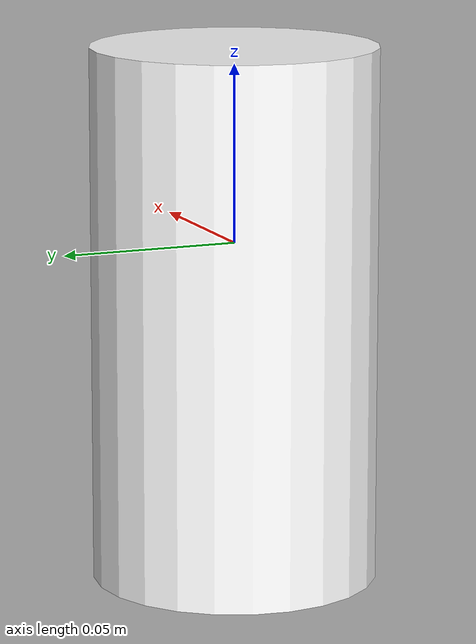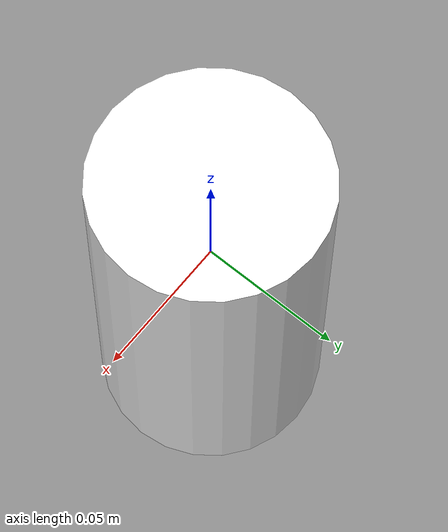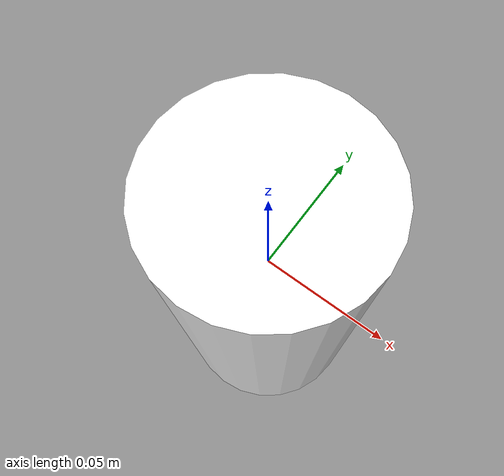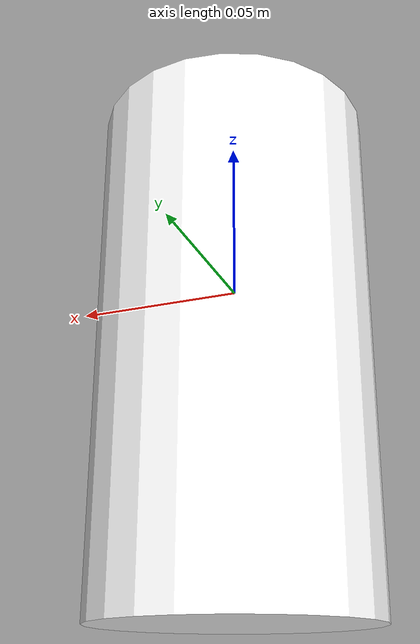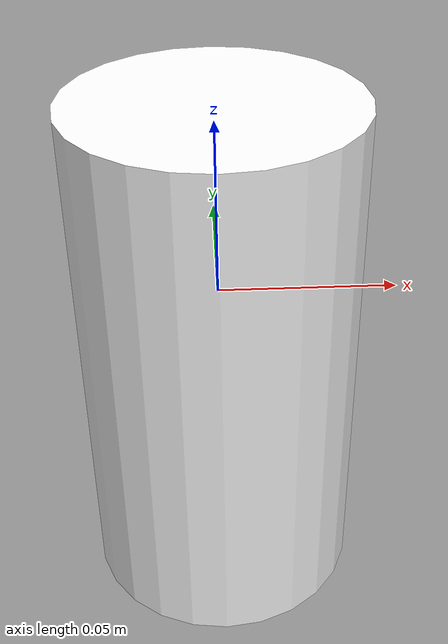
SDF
<?xml version='1.0'?>
<sdf version='1.6'>
  <model name='cocacola_can'>
    <link name='link'>
      <inertial>
        <mass>0.25</mass>
        <inertia>
          <ixx>0</ixx>
          <ixy>0</ixy>
          <ixz>0</ixz>
          <iyy>0</iyy>
          <iyz>0</iyz>
          <izz>0</izz>
        </inertia>
        <pose frame=''>0 0 0.0 0 -0 0</pose>
      </inertial>
      <velocity_decay>
        <linear>0</linear>
        <angular>0</angular>
      </velocity_decay>
      <self_collide>0</self_collide>
      <kinematic>0</kinematic>
      <gravity>1</gravity>
      <enable_wind>0</enable_wind>
      <pose frame=''>0 0.0 -0.02 0 -0 0</pose>
      <visual name='visual'>
        <pose frame=''>0 0 0.0 -3.14159 0 0</pose>
        <geometry>
          <cylinder>
            <radius>0.04</radius>
            <length>0.15</length>
          </cylinder>
        </geometry>
        <material>
          <script>
            <uri>model://cocacola/material/scripts</uri>
            <uri>model://cocacola/material/textures</uri>
            <name>Custom/cocacola</name>
          </script>
          <shader type='vertex'>
            <normal_map>__default__</normal_map>
          </shader>
          <ambient>1 1 1 1</ambient>
          <diffuse>1 1 1 1</diffuse>
          <specular>0 0 0 1</specular>
          <emissive>0 0 0 1</emissive>
        </material>
        <transparency>0</transparency>
        <cast_shadows>1</cast_shadows>
      </visual>
      <collision name='collision'>
        <laser_retro>0</laser_retro>
        <max_contacts>10</max_contacts>
        <pose frame=''>0 0 0.0 -3.14159 0 0</pose>
        <geometry>
          <cylinder>
            <radius>0.04</radius>
            <length>0.15</length>
          </cylinder>
        </geometry>
        <surface>
          <friction>
            <ode>
              <mu>1</mu>
              <mu2>1</mu2>
              <fdir1>0 0 0</fdir1>
              <slip1>0</slip1>
              <slip2>0</slip2>
            </ode>
            <torsional>
              <coefficient>1</coefficient>
              <patch_radius>0</patch_radius>
              <surface_radius>0</surface_radius>
              <use_patch_radius>1</use_patch_radius>
              <ode>
                <slip>0</slip>
              </ode>
            </torsional>
          </friction>
          <bounce>
            <restitution_coefficient>0</restitution_coefficient>
            <threshold>1e+06</threshold>
          </bounce>
          <contact>
            <collide_without_contact>0</collide_without_contact>
            <collide_without_contact_bitmask>1</collide_without_contact_bitmask>
            <collide_bitmask>1</collide_bitmask>
            <ode>
              <soft_cfm>0</soft_cfm>
              <soft_erp>0.2</soft_erp>
              <kp>1e+13</kp>
              <kd>1</kd>
              <max_vel>0.01</max_vel>
              <min_depth>0</min_depth>
            </ode>
            <bullet>
              <split_impulse>1</split_impulse>
              <split_impulse_penetration_threshold>-0.01</split_impulse_penetration_threshold>
              <soft_cfm>0</soft_cfm>
              <soft_erp>0.2</soft_erp>
              <kp>1e+13</kp>
              <kd>1</kd>
            </bullet>
          </contact>
        </surface>
      </collision>
    </link>
    <static>0</static>
    <allow_auto_disable>1</allow_auto_disable>
  </model>
</sdf>
